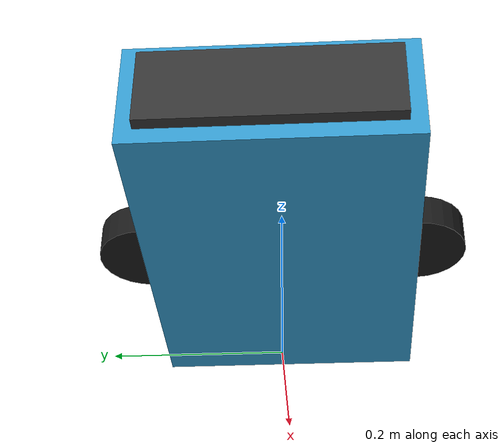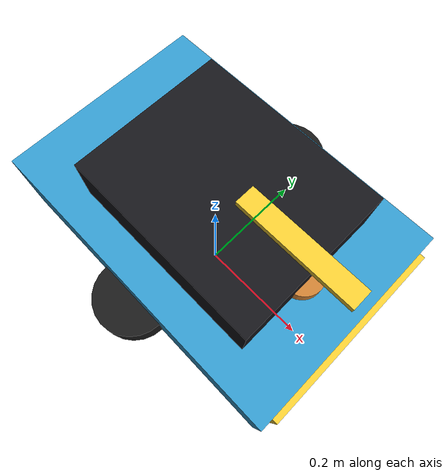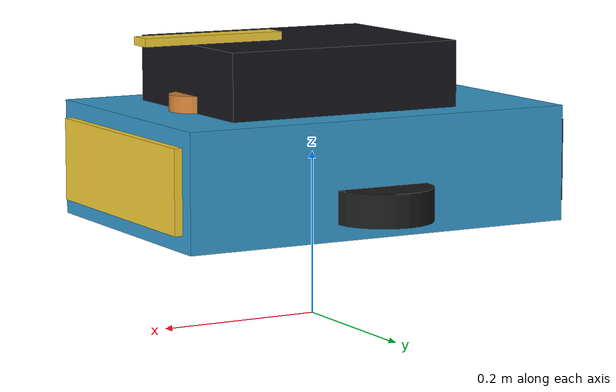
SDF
<?xml version="1.0"?>
<sdf version="1.8">
  <model name="simple_marl_car">
    <static>false</static>
    <pose>0 0 0.1 0 0 0</pose>

    <link name="base_link">
      <pose>0 0 0.1 0 0 0</pose>
      <inertial>
        <mass>8.0</mass>
        <inertia>
          <ixx>0.08</ixx>
          <iyy>0.08</iyy>
          <izz>0.12</izz>
          <ixy>0.0</ixy>
          <ixz>0.0</ixz>
          <iyz>0.0</iyz>
        </inertia>
      </inertial>
      <collision name="base_collision_main">
        <geometry>
          <box><size>0.30 0.30 0.14</size></box>
        </geometry>
        <surface>
          <friction>
            <ode>
              <mu>1.0</mu>
              <mu2>1.0</mu2>
            </ode>
          </friction>
        </surface>
      </collision>
      <collision name="base_collision_front">
        <pose>0.16 0 0 0 0 0</pose>
        <geometry>
          <box><size>0.12 0.26 0.12</size></box>
        </geometry>
      </collision>
      <collision name="base_collision_rear">
        <pose>-0.15 0 0 0 0 0</pose>
        <geometry>
          <box><size>0.10 0.26 0.12</size></box>
        </geometry>
      </collision>
      <visual name="base_visual">
        <pose>0 0 -0.01 0 0 0</pose>
        <geometry>
          <box><size>0.50 0.34 0.14</size></box>
        </geometry>
        <material>
          <ambient>0.2 0.6 0.8 1.0</ambient>
          <diffuse>0.2 0.6 0.8 1.0</diffuse>
        </material>
      </visual>
      <visual name="cabin_visual">
        <pose>0.02 0 0.10 0 0 0</pose>
        <geometry>
          <box><size>0.30 0.24 0.08</size></box>
        </geometry>
        <material>
          <ambient>0.08 0.08 0.1 1.0</ambient>
          <diffuse>0.08 0.08 0.1 1.0</diffuse>
        </material>
      </visual>
      <visual name="front_nose_visual">
        <pose>0.24 0 -0.01 0 0 0</pose>
        <geometry>
          <box><size>0.04 0.30 0.10</size></box>
        </geometry>
        <material>
          <ambient>0.95 0.80 0.20 1.0</ambient>
          <diffuse>0.95 0.80 0.20 1.0</diffuse>
        </material>
      </visual>
      <visual name="rear_panel_visual">
        <pose>-0.25 0 -0.01 0 0 0</pose>
        <geometry>
          <box><size>0.03 0.30 0.10</size></box>
        </geometry>
        <material>
          <ambient>0.2 0.2 0.2 1.0</ambient>
          <diffuse>0.2 0.2 0.2 1.0</diffuse>
        </material>
      </visual>
      <visual name="heading_strip_visual">
        <pose>0.14 0 0.145 0 0 0</pose>
        <geometry>
          <box><size>0.18 0.03 0.01</size></box>
        </geometry>
        <material>
          <ambient>0.95 0.80 0.20 1.0</ambient>
          <diffuse>0.95 0.80 0.20 1.0</diffuse>
        </material>
      </visual>
    </link>

    <link name="left_wheel_link">
      <pose>0.0 0.17 0.06 0 0 1.5708</pose>
      <inertial>
        <mass>1.0</mass>
        <inertia>
          <ixx>0.01</ixx>
          <iyy>0.01</iyy>
          <izz>0.01</izz>
        </inertia>
      </inertial>
      <collision name="left_wheel_collision">
        <geometry>
          <cylinder>
            <radius>0.06</radius>
            <length>0.04</length>
          </cylinder>
        </geometry>
      </collision>
      <visual name="left_wheel_visual">
        <geometry>
          <cylinder>
            <radius>0.06</radius>
            <length>0.04</length>
          </cylinder>
        </geometry>
        <material>
          <ambient>0.1 0.1 0.1 1.0</ambient>
          <diffuse>0.1 0.1 0.1 1.0</diffuse>
        </material>
      </visual>
    </link>

    <link name="right_wheel_link">
      <pose>0.0 -0.17 0.06 0 0 1.5708</pose>
      <inertial>
        <mass>1.0</mass>
        <inertia>
          <ixx>0.01</ixx>
          <iyy>0.01</iyy>
          <izz>0.01</izz>
        </inertia>
      </inertial>
      <collision name="right_wheel_collision">
        <geometry>
          <cylinder>
            <radius>0.06</radius>
            <length>0.04</length>
          </cylinder>
        </geometry>
      </collision>
      <visual name="right_wheel_visual">
        <geometry>
          <cylinder>
            <radius>0.06</radius>
            <length>0.04</length>
          </cylinder>
        </geometry>
        <material>
          <ambient>0.1 0.1 0.1 1.0</ambient>
          <diffuse>0.1 0.1 0.1 1.0</diffuse>
        </material>
      </visual>
    </link>

    <link name="lidar_link">
      <pose>0.16 0 0.16 0 0 0</pose>
      <collision name="lidar_collision">
        <geometry>
          <cylinder>
            <radius>0.03</radius>
            <length>0.04</length>
          </cylinder>
        </geometry>
      </collision>
      <visual name="lidar_visual">
        <geometry>
          <cylinder>
            <radius>0.03</radius>
            <length>0.04</length>
          </cylinder>
        </geometry>
        <material>
          <ambient>0.8 0.5 0.2 1.0</ambient>
          <diffuse>0.8 0.5 0.2 1.0</diffuse>
        </material>
      </visual>
      <sensor name="lidar" type="lidar">
        <pose>0 0 0 0 0 0</pose>
        <update_rate>12.0</update_rate>
        <topic>/scan</topic>
        <lidar>
          <scan>
            <horizontal>
              <samples>360</samples>
              <resolution>1</resolution>
              <min_angle>-3.14159</min_angle>
              <max_angle>3.14159</max_angle>
            </horizontal>
          </scan>
          <range>
            <min>0.08</min>
            <max>8.0</max>
            <resolution>0.01</resolution>
          </range>
        </lidar>
      </sensor>
    </link>

    <joint name="left_wheel_joint" type="revolute">
      <parent>base_link</parent>
      <child>left_wheel_link</child>
      <pose>0 0 0 0 0 0</pose>
      <axis>
        <xyz>0 1 0</xyz>
        <limit>
          <lower>-1e16</lower>
          <upper>1e16</upper>
        </limit>
      </axis>
    </joint>

    <joint name="right_wheel_joint" type="revolute">
      <parent>base_link</parent>
      <child>right_wheel_link</child>
      <pose>0 0 0 0 0 0</pose>
      <axis>
        <xyz>0 1 0</xyz>
        <limit>
          <lower>-1e16</lower>
          <upper>1e16</upper>
        </limit>
      </axis>
    </joint>

    <joint name="lidar_joint" type="fixed">
      <parent>base_link</parent>
      <child>lidar_link</child>
    </joint>

    <plugin filename="gz-sim-diff-drive-system" name="gz::sim::systems::DiffDrive">
      <topic>/model/simple_marl_car/cmd_vel</topic>
      <left_joint>left_wheel_joint</left_joint>
      <right_joint>right_wheel_joint</right_joint>
      <wheel_separation>0.34</wheel_separation>
      <wheel_radius>0.06</wheel_radius>
      <odom_publish_frequency>50</odom_publish_frequency>
    </plugin>
  </model>
</sdf>
